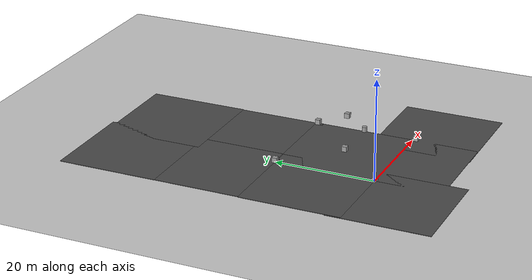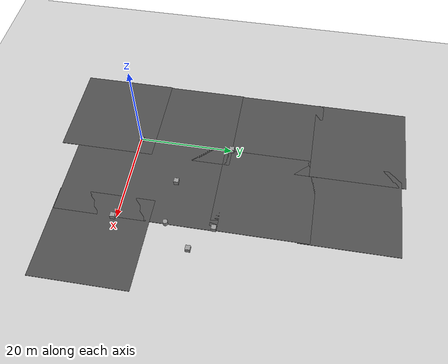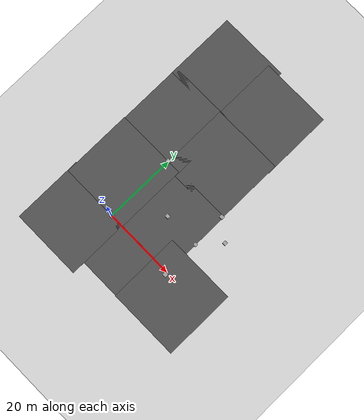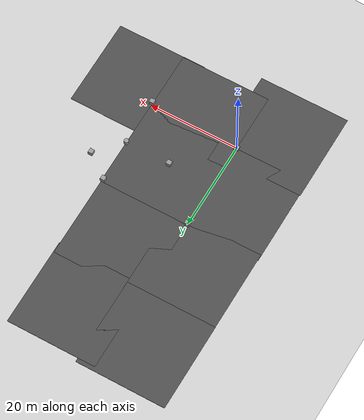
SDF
<sdf version="1.7">
 <world name="default">
  <model name="ground_plane">
   <static>1</static>
   <link name="link">
    <collision name="collision">
     <geometry><plane><normal>0 0 1</normal><size>100 100</size></plane></geometry>
     <surface><friction><ode><mu>100</mu><mu2>50</mu2></ode></friction></surface>
    </collision>
    <visual name="visual">
     <cast_shadows>0</cast_shadows>
     <geometry><plane><normal>0 0 1</normal><size>100 100</size></plane></geometry>
     <material>
      <script><uri>file://media/materials/scripts/gazebo.material</uri><name>Gazebo/Grey</name></script>
     </material>
    </visual>
   </link>
  </model>
  <model name="marker_bottom_left">
   <link name="link">
    <inertial>
     <mass>1</mass>
     <inertia>
      <ixx>0.166667</ixx>
      <ixy>0</ixy>
      <ixz>0</ixz>
      <iyy>0.166667</iyy>
      <iyz>0</iyz>
      <izz>0.166667</izz>
     </inertia>
    </inertial>
    <visual name="visual">
     <geometry><box><size>1 1 1</size></box></geometry>
     <material>
      <script><name>Gazebo/Grey</name><uri>file://media/materials/scripts/gazebo.material</uri></script>
      <shader type="pixel"/>
     </material>
    </visual>
    <collision name="collision">
     <geometry><box><size>1 1 1</size></box></geometry>
     <surface>
      <friction>
       <ode><mu>1</mu><mu2>1</mu2><fdir1>0 0 0</fdir1><slip1>0</slip1><slip2>0</slip2></ode>
       <torsional>
        <coefficient>1</coefficient>
        <patch_radius>0</patch_radius>
        <surface_radius>0</surface_radius>
        <use_patch_radius>1</use_patch_radius>
        <ode><slip>0</slip></ode>
       </torsional>
      </friction>
      <bounce><restitution_coefficient>0</restitution_coefficient><threshold>1e+06</threshold></bounce>
      <contact>
       <collide_without_contact>0</collide_without_contact>
       <collide_without_contact_bitmask>1</collide_without_contact_bitmask>
       <collide_bitmask>1</collide_bitmask>
       <ode>
        <soft_cfm>0</soft_cfm>
        <soft_erp>0.2</soft_erp>
        <kp>1e+13</kp>
        <kd>1</kd>
        <max_vel>0.01</max_vel>
        <min_depth>0</min_depth>
       </ode>
       <bullet>
        <split_impulse>1</split_impulse>
        <split_impulse_penetration_threshold>-0.01</split_impulse_penetration_threshold>
        <soft_cfm>0</soft_cfm>
        <soft_erp>0.2</soft_erp>
        <kp>1e+13</kp>
        <kd>1</kd>
       </bullet>
      </contact>
     </surface>
    </collision>
   </link>
   <static>1</static>
   <pose>0 20 0.549996 1e-05 -0 2.2e-05</pose>
  </model>
  <model name="marker_bottom_right">
   <link name="link">
    <inertial>
     <mass>1</mass>
     <inertia>
      <ixx>0.166667</ixx>
      <ixy>0</ixy>
      <ixz>0</ixz>
      <iyy>0.166667</iyy>
      <iyz>0</iyz>
      <izz>0.166667</izz>
     </inertia>
    </inertial>
    <visual name="visual">
     <geometry><box><size>1 1 1</size></box></geometry>
     <material>
      <script><name>Gazebo/Grey</name><uri>file://media/materials/scripts/gazebo.material</uri></script>
      <shader type="pixel"/>
     </material>
    </visual>
    <collision name="collision">
     <geometry><box><size>1 1 1</size></box></geometry>
     <surface>
      <friction>
       <ode><mu>1</mu><mu2>1</mu2><fdir1>0 0 0</fdir1><slip1>0</slip1><slip2>0</slip2></ode>
       <torsional>
        <coefficient>1</coefficient>
        <patch_radius>0</patch_radius>
        <surface_radius>0</surface_radius>
        <use_patch_radius>1</use_patch_radius>
        <ode><slip>0</slip></ode>
       </torsional>
      </friction>
      <bounce><restitution_coefficient>0</restitution_coefficient><threshold>1e+06</threshold></bounce>
      <contact>
       <collide_without_contact>0</collide_without_contact>
       <collide_without_contact_bitmask>1</collide_without_contact_bitmask>
       <collide_bitmask>1</collide_bitmask>
       <ode>
        <soft_cfm>0</soft_cfm>
        <soft_erp>0.2</soft_erp>
        <kp>1e+13</kp>
        <kd>1</kd>
        <max_vel>0.01</max_vel>
        <min_depth>0</min_depth>
       </ode>
       <bullet>
        <split_impulse>1</split_impulse>
        <split_impulse_penetration_threshold>-0.01</split_impulse_penetration_threshold>
        <soft_cfm>0</soft_cfm>
        <soft_erp>0.2</soft_erp>
        <kp>1e+13</kp>
        <kd>1</kd>
       </bullet>
      </contact>
     </surface>
    </collision>
   </link>
   <static>1</static>
  </model>
  <model name="marker_top_right">
   <link name="link">
    <inertial>
     <mass>1</mass>
     <inertia>
      <ixx>0.166667</ixx>
      <ixy>0</ixy>
      <ixz>0</ixz>
      <iyy>0.166667</iyy>
      <iyz>0</iyz>
      <izz>0.166667</izz>
     </inertia>
    </inertial>
    <visual name="visual">
     <geometry><box><size>1 1 1</size></box></geometry>
     <material>
      <script><name>Gazebo/Grey</name><uri>file://media/materials/scripts/gazebo.material</uri></script>
      <shader type="pixel"/>
     </material>
    </visual>
    <collision name="collision">
     <geometry><box><size>1 1 1</size></box></geometry>
     <surface>
      <friction>
       <ode><mu>1</mu><mu2>1</mu2><fdir1>0 0 0</fdir1><slip1>0</slip1><slip2>0</slip2></ode>
       <torsional>
        <coefficient>1</coefficient>
        <patch_radius>0</patch_radius>
        <surface_radius>0</surface_radius>
        <use_patch_radius>1</use_patch_radius>
        <ode><slip>0</slip></ode>
       </torsional>
      </friction>
      <bounce><restitution_coefficient>0</restitution_coefficient><threshold>1e+06</threshold></bounce>
      <contact>
       <collide_without_contact>0</collide_without_contact>
       <collide_without_contact_bitmask>1</collide_without_contact_bitmask>
       <collide_bitmask>1</collide_bitmask>
       <ode>
        <soft_cfm>0</soft_cfm>
        <soft_erp>0.2</soft_erp>
        <kp>1e+13</kp>
        <kd>1</kd>
        <max_vel>0.01</max_vel>
        <min_depth>0</min_depth>
       </ode>
       <bullet>
        <split_impulse>1</split_impulse>
        <split_impulse_penetration_threshold>-0.01</split_impulse_penetration_threshold>
        <soft_cfm>0</soft_cfm>
        <soft_erp>0.2</soft_erp>
        <kp>1e+13</kp>
        <kd>1</kd>
       </bullet>
      </contact>
     </surface>
    </collision>
   </link>
   <static>0</static>
   <pose>20.095 -0.660312 0.549995 -1e-05 -0 0.021672</pose>
  </model>
  <model name="marker_top_left">
   <link name="link">
    <inertial>
     <mass>1</mass>
     <inertia>
      <ixx>0.166667</ixx>
      <ixy>0</ixy>
      <ixz>0</ixz>
      <iyy>0.166667</iyy>
      <iyz>0</iyz>
      <izz>0.166667</izz>
     </inertia>
    </inertial>
    <visual name="visual">
     <geometry><box><size>1 1 1</size></box></geometry>
     <material>
      <script><name>Gazebo/Grey</name><uri>file://media/materials/scripts/gazebo.material</uri></script>
      <shader type="pixel"/>
     </material>
    </visual>
    <collision name="collision">
     <geometry><box><size>1 1 1</size></box></geometry>
     <surface>
      <friction>
       <ode><mu>1</mu><mu2>1</mu2><fdir1>0 0 0</fdir1><slip1>0</slip1><slip2>0</slip2></ode>
       <torsional>
        <coefficient>1</coefficient>
        <patch_radius>0</patch_radius>
        <surface_radius>0</surface_radius>
        <use_patch_radius>1</use_patch_radius>
        <ode><slip>0</slip></ode>
       </torsional>
      </friction>
      <bounce><restitution_coefficient>0</restitution_coefficient><threshold>1e+06</threshold></bounce>
      <contact>
       <collide_without_contact>0</collide_without_contact>
       <collide_without_contact_bitmask>1</collide_without_contact_bitmask>
       <collide_bitmask>1</collide_bitmask>
       <ode>
        <soft_cfm>0</soft_cfm>
        <soft_erp>0.2</soft_erp>
        <kp>1e+13</kp>
        <kd>1</kd>
        <max_vel>0.01</max_vel>
        <min_depth>0</min_depth>
       </ode>
       <bullet>
        <split_impulse>1</split_impulse>
        <split_impulse_penetration_threshold>-0.01</split_impulse_penetration_threshold>
        <soft_cfm>0</soft_cfm>
        <soft_erp>0.2</soft_erp>
        <kp>1e+13</kp>
        <kd>1</kd>
       </bullet>
      </contact>
     </surface>
    </collision>
   </link>
   <static>0</static>
   <pose>19.6961 19.6629 0.549997 6e-06 -0 -0.024566</pose>
  </model>
  <model name="asphalt_plane_clone_clone_0_clone_0">
   <static>1</static>
   <link name="link">
    <collision name="collision"><geometry><box><size>20 20 0.1</size></box></geometry></collision>
    <visual name="visual">
     <cast_shadows>0</cast_shadows>
     <geometry><box><size>20 20 0.1</size></box></geometry>
     <material>
      <script>
       <uri>model://asphalt_plane/materials/scripts</uri>
       <uri>model://asphalt_plane/materials/textures</uri>
       <name>vrc/asphalt</name>
      </script>
     </material>
    </visual>
   </link>
   <pose>10.051 10.1766 0 0 -0 0</pose>
  </model>
  <model name="asphalt_plane_clone_clone_0_clone_0_clone_clone">
   <static>1</static>
   <link name="link">
    <collision name="collision"><geometry><box><size>20 20 0.1</size></box></geometry></collision>
    <visual name="visual">
     <cast_shadows>0</cast_shadows>
     <geometry><box><size>20 20 0.1</size></box></geometry>
     <material>
      <script>
       <uri>model://asphalt_plane/materials/scripts</uri>
       <uri>model://asphalt_plane/materials/textures</uri>
       <name>vrc/asphalt</name>
      </script>
     </material>
    </visual>
   </link>
   <pose>10.0086 -3.1862 0 0 -0 0</pose>
  </model>
  <model name="asphalt_plane_clone_clone_0_clone_0_clone_clone_0">
   <static>1</static>
   <link name="link">
    <collision name="collision"><geometry><box><size>20 20 0.1</size></box></geometry></collision>
    <visual name="visual">
     <cast_shadows>0</cast_shadows>
     <geometry><box><size>20 20 0.1</size></box></geometry>
     <material>
      <script>
       <uri>model://asphalt_plane/materials/scripts</uri>
       <uri>model://asphalt_plane/materials/textures</uri>
       <name>vrc/asphalt</name>
      </script>
     </material>
    </visual>
   </link>
   <pose>25.0254 -3.29203 0 0 -0 0</pose>
  </model>
  <model name="asphalt_plane_clone_clone_0_clone_0_clone_clone_1">
   <static>1</static>
   <link name="link">
    <collision name="collision"><geometry><box><size>20 20 0.1</size></box></geometry></collision>
    <visual name="visual">
     <cast_shadows>0</cast_shadows>
     <geometry><box><size>20 20 0.1</size></box></geometry>
     <material>
      <script>
       <uri>model://asphalt_plane/materials/scripts</uri>
       <uri>model://asphalt_plane/materials/textures</uri>
       <name>vrc/asphalt</name>
      </script>
     </material>
    </visual>
   </link>
   <pose>9.93751 28.5985 0 0 -0 0</pose>
  </model>
  <model name="asphalt_plane_clone_clone_0_clone_0_clone_clone_3">
   <static>1</static>
   <link name="link">
    <collision name="collision"><geometry><box><size>20 20 0.1</size></box></geometry></collision>
    <visual name="visual">
     <cast_shadows>0</cast_shadows>
     <geometry><box><size>20 20 0.1</size></box></geometry>
     <material>
      <script>
       <uri>model://asphalt_plane/materials/scripts</uri>
       <uri>model://asphalt_plane/materials/textures</uri>
       <name>vrc/asphalt</name>
      </script>
     </material>
    </visual>
   </link>
   <pose>-6.05119 28.7094 0 0 -0 0</pose>
  </model>
  <model name="asphalt_plane_clone_clone_0_clone_0_clone_clone_4">
   <static>1</static>
   <link name="link">
    <collision name="collision"><geometry><box><size>20 20 0.1</size></box></geometry></collision>
    <visual name="visual">
     <cast_shadows>0</cast_shadows>
     <geometry><box><size>20 20 0.1</size></box></geometry>
     <material>
      <script>
       <uri>model://asphalt_plane/materials/scripts</uri>
       <uri>model://asphalt_plane/materials/textures</uri>
       <name>vrc/asphalt</name>
      </script>
     </material>
    </visual>
   </link>
   <pose>-6.18027 10.0246 0 0 -0 0</pose>
  </model>
  <model name="asphalt_plane_clone_clone_0_clone_0_clone_clone_5">
   <static>1</static>
   <link name="link">
    <collision name="collision"><geometry><box><size>20 20 0.1</size></box></geometry></collision>
    <visual name="visual">
     <cast_shadows>0</cast_shadows>
     <geometry><box><size>20 20 0.1</size></box></geometry>
     <material>
      <script>
       <uri>model://asphalt_plane/materials/scripts</uri>
       <uri>model://asphalt_plane/materials/textures</uri>
       <name>vrc/asphalt</name>
      </script>
     </material>
    </visual>
   </link>
   <pose>-6.36926 -6.88231 0 0 -0 0</pose>
  </model>
  <model name="asphalt_plane_clone_clone_0_clone_0_clone_clone_6">
   <static>1</static>
   <link name="link">
    <collision name="collision"><geometry><box><size>20 20 0.1</size></box></geometry></collision>
    <visual name="visual">
     <cast_shadows>0</cast_shadows>
     <geometry><box><size>20 20 0.1</size></box></geometry>
     <material>
      <script>
       <uri>model://asphalt_plane/materials/scripts</uri>
       <uri>model://asphalt_plane/materials/textures</uri>
       <name>vrc/asphalt</name>
      </script>
     </material>
    </visual>
   </link>
   <pose>-6.08705 47.0345 0 0 -0 0</pose>
  </model>
  <model name="asphalt_plane_clone_clone_0_clone_0_clone_clone_7">
   <static>1</static>
   <link name="link">
    <collision name="collision"><geometry><box><size>20 20 0.1</size></box></geometry></collision>
    <visual name="visual">
     <cast_shadows>0</cast_shadows>
     <geometry><box><size>20 20 0.1</size></box></geometry>
     <material>
      <script>
       <uri>model://asphalt_plane/materials/scripts</uri>
       <uri>model://asphalt_plane/materials/textures</uri>
       <name>vrc/asphalt</name>
      </script>
     </material>
    </visual>
   </link>
   <pose>10.0798 46.1623 0 0 -0 0</pose>
  </model>
  <model name="unit_cylinder">
   <pose>20 10 0.549998 0 -5e-06 -8.9e-05</pose>
   <link name="link">
    <inertial>
     <mass>1</mass>
     <inertia><ixx>0.145833</ixx><ixy>0</ixy><ixz>0</ixz><iyy>0.145833</iyy><iyz>0</iyz><izz>0.125</izz></inertia>
    </inertial>
    <collision name="collision">
     <geometry><cylinder><radius>0.5</radius><length>1</length></cylinder></geometry>
    </collision>
    <visual name="visual">
     <geometry><cylinder><radius>0.5</radius><length>1</length></cylinder></geometry>
     <material>
      <script><name>Gazebo/Grey</name><uri>file://media/materials/scripts/gazebo.material</uri></script>
     </material>
    </visual>
   </link>
  </model>
  <model name="unit_box">
   <pose>9.99998 10.0139 0.549999 -2e-06 0 3.4e-05</pose>
   <link name="link">
    <inertial>
     <mass>1</mass>
     <inertia>
      <ixx>0.166667</ixx>
      <ixy>0</ixy>
      <ixz>0</ixz>
      <iyy>0.166667</iyy>
      <iyz>0</iyz>
      <izz>0.166667</izz>
     </inertia>
    </inertial>
    <collision name="collision"><geometry><box><size>1 1 1</size></box></geometry></collision>
    <visual name="visual">
     <geometry><box><size>1 1 1</size></box></geometry>
     <material>
      <script><name>Gazebo/Grey</name><uri>file://media/materials/scripts/gazebo.material</uri></script>
     </material>
    </visual>
   </link>
  </model>
  <model name="unit_box_0">
   <pose>24.9265 15.591 0.55 -0 -0 -0</pose>
   <link name="link">
    <inertial>
     <mass>1</mass>
     <inertia>
      <ixx>0.166667</ixx>
      <ixy>0</ixy>
      <ixz>0</ixz>
      <iyy>0.166667</iyy>
      <iyz>0</iyz>
      <izz>0.166667</izz>
     </inertia>
    </inertial>
    <collision name="collision"><geometry><box><size>1 1 1</size></box></geometry></collision>
    <visual name="visual">
     <geometry><box><size>1 1 1</size></box></geometry>
     <material>
      <script><name>Gazebo/Grey</name><uri>file://media/materials/scripts/gazebo.material</uri></script>
     </material>
    </visual>
   </link>
  </model>
 </world>
</sdf>
